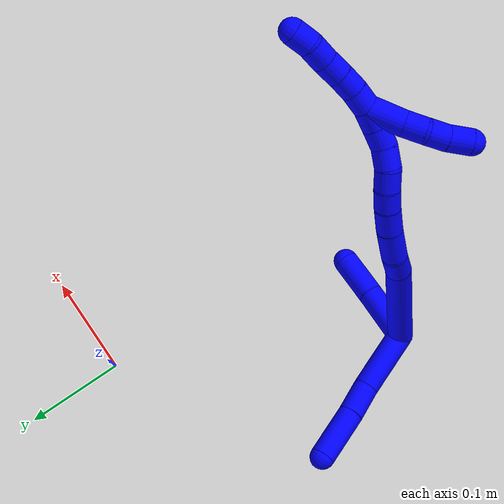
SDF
<sdf version="1.7">
 <world name="default">
  <model name="1">
   <static>0</static>
   <link name="1">
    <collision name="collision-cylinder-e_1_2_8">
     <pose>-0.031248 0.005356 -0.000579 -1.6785 -1.40007 1.50719</pose>
     <geometry><cylinder><radius>0.0125</radius><length>0.063418</length></cylinder></geometry>
     <surface>
      <friction><ode><mu>1.16</mu><mu2>1.16</mu2><slip1>0</slip1><slip2>0</slip2></ode></friction>
      <contact><ode><kp>1e+06</kp><kd>1</kd><max_vel>0</max_vel><min_depth>0.001</min_depth></ode></contact>
     </surface>
    </collision>
    <visual name="visual-cylinder-e_1_2_8">
     <pose>-0.031248 0.005356 -0.000579 -1.6785 -1.40007 1.50719</pose>
     <geometry><cylinder><radius>0.0125</radius><length>0.063418</length></cylinder></geometry>
     <material><ambient>0 0 1 1</ambient></material>
    </visual>
    <collision name="collision-cylinder-e_2_8_9">
     <pose>-0.077822 0.01696 -0.001065 -1.55583 -1.18363 1.16982</pose>
     <geometry><cylinder><radius>0.0125</radius><length>0.033104</length></cylinder></geometry>
     <surface>
      <friction><ode><mu>1.16</mu><mu2>1.16</mu2><slip1>0</slip1><slip2>0</slip2></ode></friction>
      <contact><ode><kp>1e+06</kp><kd>1</kd><max_vel>0</max_vel><min_depth>0.001</min_depth></ode></contact>
     </surface>
    </collision>
    <visual name="visual-cylinder-e_2_8_9">
     <pose>-0.077822 0.01696 -0.001065 -1.55583 -1.18363 1.16982</pose>
     <geometry><cylinder><radius>0.0125</radius><length>0.033104</length></cylinder></geometry>
     <material><ambient>0 0 1 1</ambient></material>
    </visual>
    <collision name="collision-cylinder-e_3_9_6">
     <pose>-0.118013 0.032957 -0.002306 -1.70687 -1.19399 1.32379</pose>
     <geometry><cylinder><radius>0.0125</radius><length>0.053479</length></cylinder></geometry>
     <surface>
      <friction><ode><mu>1.16</mu><mu2>1.16</mu2><slip1>0</slip1><slip2>0</slip2></ode></friction>
      <contact><ode><kp>1e+06</kp><kd>1</kd><max_vel>0</max_vel><min_depth>0.001</min_depth></ode></contact>
     </surface>
    </collision>
    <visual name="visual-cylinder-e_3_9_6">
     <pose>-0.118013 0.032957 -0.002306 -1.70687 -1.19399 1.32379</pose>
     <geometry><cylinder><radius>0.0125</radius><length>0.053479</length></cylinder></geometry>
     <material><ambient>0 0 1 1</ambient></material>
    </visual>
    <collision name="collision-cylinder-e_1_2_10">
     <pose>0.009305 -0.013395 -0.022246 2.59959 0.344082 1.11777</pose>
     <geometry><cylinder><radius>0.0125</radius><length>0.055169</length></cylinder></geometry>
     <surface>
      <friction><ode><mu>1.16</mu><mu2>1.16</mu2><slip1>0</slip1><slip2>0</slip2></ode></friction>
      <contact><ode><kp>1e+06</kp><kd>1</kd><max_vel>0</max_vel><min_depth>0.001</min_depth></ode></contact>
     </surface>
    </collision>
    <visual name="visual-cylinder-e_1_2_10">
     <pose>0.009305 -0.013395 -0.022246 2.59959 0.344082 1.11777</pose>
     <geometry><cylinder><radius>0.0125</radius><length>0.055169</length></cylinder></geometry>
     <material><ambient>0 0 1 1</ambient></material>
    </visual>
    <collision name="collision-cylinder-e_2_10_5">
     <pose>0.02589 -0.036109 -0.063535 2.68654 0.330767 1.2492</pose>
     <geometry><cylinder><radius>0.0125</radius><length>0.044831</length></cylinder></geometry>
     <surface>
      <friction><ode><mu>1.16</mu><mu2>1.16</mu2><slip1>0</slip1><slip2>0</slip2></ode></friction>
      <contact><ode><kp>1e+06</kp><kd>1</kd><max_vel>0</max_vel><min_depth>0.001</min_depth></ode></contact>
     </surface>
    </collision>
    <visual name="visual-cylinder-e_2_10_5">
     <pose>0.02589 -0.036109 -0.063535 2.68654 0.330767 1.2492</pose>
     <geometry><cylinder><radius>0.0125</radius><length>0.044831</length></cylinder></geometry>
     <material><ambient>0 0 1 1</ambient></material>
    </visual>
    <collision name="collision-cylinder-e_1_2_11">
     <pose>0.023943 0.044715 -0.025924 -2.0962 0.433809 -0.730644</pose>
     <geometry><cylinder><radius>0.0125</radius><length>0.113924</length></cylinder></geometry>
     <surface>
      <friction><ode><mu>1.16</mu><mu2>1.16</mu2><slip1>0</slip1><slip2>0</slip2></ode></friction>
      <contact><ode><kp>1e+06</kp><kd>1</kd><max_vel>0</max_vel><min_depth>0.001</min_depth></ode></contact>
     </surface>
    </collision>
    <visual name="visual-cylinder-e_1_2_11">
     <pose>0.023943 0.044715 -0.025924 -2.0962 0.433809 -0.730644</pose>
     <geometry><cylinder><radius>0.0125</radius><length>0.113924</length></cylinder></geometry>
     <material><ambient>0 0 1 1</ambient></material>
    </visual>
    <collision name="collision-cylinder-e_2_11_12">
     <pose>0.051574 0.099709 -0.058716 -2.15987 0.289891 -0.533194</pose>
     <geometry><cylinder><radius>0.0125</radius><length>0.025803</length></cylinder></geometry>
     <surface>
      <friction><ode><mu>1.16</mu><mu2>1.16</mu2><slip1>0</slip1><slip2>0</slip2></ode></friction>
      <contact><ode><kp>1e+06</kp><kd>1</kd><max_vel>0</max_vel><min_depth>0.001</min_depth></ode></contact>
     </surface>
    </collision>
    <visual name="visual-cylinder-e_2_11_12">
     <pose>0.051574 0.099709 -0.058716 -2.15987 0.289891 -0.533194</pose>
     <geometry><cylinder><radius>0.0125</radius><length>0.025803</length></cylinder></geometry>
     <material><ambient>0 0 1 1</ambient></material>
    </visual>
    <collision name="collision-cylinder-e_3_12_13">
     <pose>0.06312 0.120614 -0.075586 -2.32588 0.493981 -1.05646</pose>
     <geometry><cylinder><radius>0.0125</radius><length>0.033147</length></cylinder></geometry>
     <surface>
      <friction><ode><mu>1.16</mu><mu2>1.16</mu2><slip1>0</slip1><slip2>0</slip2></ode></friction>
      <contact><ode><kp>1e+06</kp><kd>1</kd><max_vel>0</max_vel><min_depth>0.001</min_depth></ode></contact>
     </surface>
    </collision>
    <visual name="visual-cylinder-e_3_12_13">
     <pose>0.06312 0.120614 -0.075586 -2.32588 0.493981 -1.05646</pose>
     <geometry><cylinder><radius>0.0125</radius><length>0.033147</length></cylinder></geometry>
     <material><ambient>0 0 1 1</ambient></material>
    </visual>
    <collision name="collision-cylinder-e_4_13_14">
     <pose>0.077978 0.138971 -0.092908 -2.32904 0.581601 -1.21562</pose>
     <geometry><cylinder><radius>0.0125</radius><length>0.025485</length></cylinder></geometry>
     <surface>
      <friction><ode><mu>1.16</mu><mu2>1.16</mu2><slip1>0</slip1><slip2>0</slip2></ode></friction>
      <contact><ode><kp>1e+06</kp><kd>1</kd><max_vel>0</max_vel><min_depth>0.001</min_depth></ode></contact>
     </surface>
    </collision>
    <visual name="visual-cylinder-e_4_13_14">
     <pose>0.077978 0.138971 -0.092908 -2.32904 0.581601 -1.21562</pose>
     <geometry><cylinder><radius>0.0125</radius><length>0.025485</length></cylinder></geometry>
     <material><ambient>0 0 1 1</ambient></material>
    </visual>
    <collision name="collision-cylinder-e_5_14_15">
     <pose>0.091357 0.152132 -0.105802 -2.36905 0.686689 -1.44222</pose>
     <geometry><cylinder><radius>0.0125</radius><length>0.020122</length></cylinder></geometry>
     <surface>
      <friction><ode><mu>1.16</mu><mu2>1.16</mu2><slip1>0</slip1><slip2>0</slip2></ode></friction>
      <contact><ode><kp>1e+06</kp><kd>1</kd><max_vel>0</max_vel><min_depth>0.001</min_depth></ode></contact>
     </surface>
    </collision>
    <visual name="visual-cylinder-e_5_14_15">
     <pose>0.091357 0.152132 -0.105802 -2.36905 0.686689 -1.44222</pose>
     <geometry><cylinder><radius>0.0125</radius><length>0.020122</length></cylinder></geometry>
     <material><ambient>0 0 1 1</ambient></material>
    </visual>
    <collision name="collision-cylinder-e_6_15_16">
     <pose>0.105125 0.16184 -0.116643 -2.45968 0.827871 -1.78282</pose>
     <geometry><cylinder><radius>0.0125</radius><length>0.020068</length></cylinder></geometry>
     <surface>
      <friction><ode><mu>1.16</mu><mu2>1.16</mu2><slip1>0</slip1><slip2>0</slip2></ode></friction>
      <contact><ode><kp>1e+06</kp><kd>1</kd><max_vel>0</max_vel><min_depth>0.001</min_depth></ode></contact>
     </surface>
    </collision>
    <visual name="visual-cylinder-e_6_15_16">
     <pose>0.105125 0.16184 -0.116643 -2.45968 0.827871 -1.78282</pose>
     <geometry><cylinder><radius>0.0125</radius><length>0.020068</length></cylinder></geometry>
     <material><ambient>0 0 1 1</ambient></material>
    </visual>
    <collision name="collision-cylinder-e_7_16_17">
     <pose>0.119575 0.168436 -0.129317 -2.8383 0.738318 -2.38923</pose>
     <geometry><cylinder><radius>0.0125</radius><length>0.020979</length></cylinder></geometry>
     <surface>
      <friction><ode><mu>1.16</mu><mu2>1.16</mu2><slip1>0</slip1><slip2>0</slip2></ode></friction>
      <contact><ode><kp>1e+06</kp><kd>1</kd><max_vel>0</max_vel><min_depth>0.001</min_depth></ode></contact>
     </surface>
    </collision>
    <visual name="visual-cylinder-e_7_16_17">
     <pose>0.119575 0.168436 -0.129317 -2.8383 0.738318 -2.38923</pose>
     <geometry><cylinder><radius>0.0125</radius><length>0.020979</length></cylinder></geometry>
     <material><ambient>0 0 1 1</ambient></material>
    </visual>
    <collision name="collision-cylinder-e_8_17_18">
     <pose>0.131167 0.174012 -0.145033 -2.76791 0.46971 -1.80425</pose>
     <geometry><cylinder><radius>0.0125</radius><length>0.020024</length></cylinder></geometry>
     <surface>
      <friction><ode><mu>1.16</mu><mu2>1.16</mu2><slip1>0</slip1><slip2>0</slip2></ode></friction>
      <contact><ode><kp>1e+06</kp><kd>1</kd><max_vel>0</max_vel><min_depth>0.001</min_depth></ode></contact>
     </surface>
    </collision>
    <visual name="visual-cylinder-e_8_17_18">
     <pose>0.131167 0.174012 -0.145033 -2.76791 0.46971 -1.80425</pose>
     <geometry><cylinder><radius>0.0125</radius><length>0.020024</length></cylinder></geometry>
     <material><ambient>0 0 1 1</ambient></material>
    </visual>
    <collision name="collision-cylinder-e_9_18_1">
     <pose>0.139861 0.181517 -0.161661 -2.66951 0.419283 -1.44849</pose>
     <geometry><cylinder><radius>0.0125</radius><length>0.020447</length></cylinder></geometry>
     <surface>
      <friction><ode><mu>1.16</mu><mu2>1.16</mu2><slip1>0</slip1><slip2>0</slip2></ode></friction>
      <contact><ode><kp>1e+06</kp><kd>1</kd><max_vel>0</max_vel><min_depth>0.001</min_depth></ode></contact>
     </surface>
    </collision>
    <visual name="visual-cylinder-e_9_18_1">
     <pose>0.139861 0.181517 -0.161661 -2.66951 0.419283 -1.44849</pose>
     <geometry><cylinder><radius>0.0125</radius><length>0.020447</length></cylinder></geometry>
     <material><ambient>0 0 1 1</ambient></material>
    </visual>
    <collision name="collision-cylinder-e_1_1_19">
     <pose>0.147632 0.185264 -0.152523 0.028614 0.203834 0.002927</pose>
     <geometry><cylinder><radius>0.0125</radius><length>0.035662</length></cylinder></geometry>
     <surface>
      <friction><ode><mu>1.16</mu><mu2>1.16</mu2><slip1>0</slip1><slip2>0</slip2></ode></friction>
      <contact><ode><kp>1e+06</kp><kd>1</kd><max_vel>0</max_vel><min_depth>0.001</min_depth></ode></contact>
     </surface>
    </collision>
    <visual name="visual-cylinder-e_1_1_19">
     <pose>0.147632 0.185264 -0.152523 0.028614 0.203834 0.002927</pose>
     <geometry><cylinder><radius>0.0125</radius><length>0.035662</length></cylinder></geometry>
     <material><ambient>0 0 1 1</ambient></material>
    </visual>
    <collision name="collision-cylinder-e_2_19_20">
     <pose>0.153965 0.185925 -0.124767 -0.112212 0.256872 -0.014507</pose>
     <geometry><cylinder><radius>0.0125</radius><length>0.021436</length></cylinder></geometry>
     <surface>
      <friction><ode><mu>1.16</mu><mu2>1.16</mu2><slip1>0</slip1><slip2>0</slip2></ode></friction>
      <contact><ode><kp>1e+06</kp><kd>1</kd><max_vel>0</max_vel><min_depth>0.001</min_depth></ode></contact>
     </surface>
    </collision>
    <visual name="visual-cylinder-e_2_19_20">
     <pose>0.153965 0.185925 -0.124767 -0.112212 0.256872 -0.014507</pose>
     <geometry><cylinder><radius>0.0125</radius><length>0.021436</length></cylinder></geometry>
     <material><ambient>0 0 1 1</ambient></material>
    </visual>
    <collision name="collision-cylinder-e_3_20_21">
     <pose>0.159693 0.185236 -0.105041 0.193894 0.303249 0.029717</pose>
     <geometry><cylinder><radius>0.0125</radius><length>0.020127</length></cylinder></geometry>
     <surface>
      <friction><ode><mu>1.16</mu><mu2>1.16</mu2><slip1>0</slip1><slip2>0</slip2></ode></friction>
      <contact><ode><kp>1e+06</kp><kd>1</kd><max_vel>0</max_vel><min_depth>0.001</min_depth></ode></contact>
     </surface>
    </collision>
    <visual name="visual-cylinder-e_3_20_21">
     <pose>0.159693 0.185236 -0.105041 0.193894 0.303249 0.029717</pose>
     <geometry><cylinder><radius>0.0125</radius><length>0.020127</length></cylinder></geometry>
     <material><ambient>0 0 1 1</ambient></material>
    </visual>
    <collision name="collision-cylinder-e_4_21_4">
     <pose>0.167538 0.182732 -0.08533 0.063372 0.439022 0.014143</pose>
     <geometry><cylinder><radius>0.0125</radius><length>0.022774</length></cylinder></geometry>
     <surface>
      <friction><ode><mu>1.16</mu><mu2>1.16</mu2><slip1>0</slip1><slip2>0</slip2></ode></friction>
      <contact><ode><kp>1e+06</kp><kd>1</kd><max_vel>0</max_vel><min_depth>0.001</min_depth></ode></contact>
     </surface>
    </collision>
    <visual name="visual-cylinder-e_4_21_4">
     <pose>0.167538 0.182732 -0.08533 0.063372 0.439022 0.014143</pose>
     <geometry><cylinder><radius>0.0125</radius><length>0.022774</length></cylinder></geometry>
     <material><ambient>0 0 1 1</ambient></material>
    </visual>
    <collision name="collision-cylinder-e_1_1_22">
     <pose>0.14671 0.188789 -0.179123 -2.8221 0.272066 -1.40845</pose>
     <geometry><cylinder><radius>0.0125</radius><length>0.02</length></cylinder></geometry>
     <surface>
      <friction><ode><mu>1.16</mu><mu2>1.16</mu2><slip1>0</slip1><slip2>0</slip2></ode></friction>
      <contact><ode><kp>1e+06</kp><kd>1</kd><max_vel>0</max_vel><min_depth>0.001</min_depth></ode></contact>
     </surface>
    </collision>
    <visual name="visual-cylinder-e_1_1_22">
     <pose>0.14671 0.188789 -0.179123 -2.8221 0.272066 -1.40845</pose>
     <geometry><cylinder><radius>0.0125</radius><length>0.02</length></cylinder></geometry>
     <material><ambient>0 0 1 1</ambient></material>
    </visual>
    <collision name="collision-cylinder-e_2_22_23">
     <pose>0.150787 0.195494 -0.197462 -2.76093 0.139408 -0.695325</pose>
     <geometry><cylinder><radius>0.0125</radius><length>0.02</length></cylinder></geometry>
     <surface>
      <friction><ode><mu>1.16</mu><mu2>1.16</mu2><slip1>0</slip1><slip2>0</slip2></ode></friction>
      <contact><ode><kp>1e+06</kp><kd>1</kd><max_vel>0</max_vel><min_depth>0.001</min_depth></ode></contact>
     </surface>
    </collision>
    <visual name="visual-cylinder-e_2_22_23">
     <pose>0.150787 0.195494 -0.197462 -2.76093 0.139408 -0.695325</pose>
     <geometry><cylinder><radius>0.0125</radius><length>0.02</length></cylinder></geometry>
     <material><ambient>0 0 1 1</ambient></material>
    </visual>
    <collision name="collision-cylinder-e_3_23_24">
     <pose>0.153064 0.203076 -0.215819 -2.73893 0.088931 -0.429298</pose>
     <geometry><cylinder><radius>0.0125</radius><length>0.02</length></cylinder></geometry>
     <surface>
      <friction><ode><mu>1.16</mu><mu2>1.16</mu2><slip1>0</slip1><slip2>0</slip2></ode></friction>
      <contact><ode><kp>1e+06</kp><kd>1</kd><max_vel>0</max_vel><min_depth>0.001</min_depth></ode></contact>
     </surface>
    </collision>
    <visual name="visual-cylinder-e_3_23_24">
     <pose>0.153064 0.203076 -0.215819 -2.73893 0.088931 -0.429298</pose>
     <geometry><cylinder><radius>0.0125</radius><length>0.02</length></cylinder></geometry>
     <material><ambient>0 0 1 1</ambient></material>
    </visual>
    <collision name="collision-cylinder-e_4_24_25">
     <pose>0.15534 0.211387 -0.233852 -2.68034 0.139164 -0.577074</pose>
     <geometry><cylinder><radius>0.0125</radius><length>0.02</length></cylinder></geometry>
     <surface>
      <friction><ode><mu>1.16</mu><mu2>1.16</mu2><slip1>0</slip1><slip2>0</slip2></ode></friction>
      <contact><ode><kp>1e+06</kp><kd>1</kd><max_vel>0</max_vel><min_depth>0.001</min_depth></ode></contact>
     </surface>
    </collision>
    <visual name="visual-cylinder-e_4_24_25">
     <pose>0.15534 0.211387 -0.233852 -2.68034 0.139164 -0.577074</pose>
     <geometry><cylinder><radius>0.0125</radius><length>0.02</length></cylinder></geometry>
     <material><ambient>0 0 1 1</ambient></material>
    </visual>
    <collision name="collision-cylinder-e_5_25_3">
     <pose>0.15676 0.218088 -0.252453 -2.91016 0.003308 -0.028455</pose>
     <geometry><cylinder><radius>0.0125</radius><length>0.02</length></cylinder></geometry>
     <surface>
      <friction><ode><mu>1.16</mu><mu2>1.16</mu2><slip1>0</slip1><slip2>0</slip2></ode></friction>
      <contact><ode><kp>1e+06</kp><kd>1</kd><max_vel>0</max_vel><min_depth>0.001</min_depth></ode></contact>
     </surface>
    </collision>
    <visual name="visual-cylinder-e_5_25_3">
     <pose>0.15676 0.218088 -0.252453 -2.91016 0.003308 -0.028455</pose>
     <geometry><cylinder><radius>0.0125</radius><length>0.02</length></cylinder></geometry>
     <material><ambient>0 0 1 1</ambient></material>
    </visual>
    <collision name="collision-sphere-3">
     <pose>0.156793 0.220382 -0.262187 0 -0 0</pose>
     <geometry><sphere><radius>0.0125</radius></sphere></geometry>
     <surface>
      <friction><ode><mu>1.16</mu><mu2>1.16</mu2><slip1>0</slip1><slip2>0</slip2></ode></friction>
      <contact><ode><kp>1e+06</kp><kd>1</kd><max_vel>0</max_vel><min_depth>0.001</min_depth></ode></contact>
     </surface>
    </collision>
    <visual name="visual-sphere-3">
     <pose>0.156793 0.220382 -0.262187 0 -0 0</pose>
     <geometry><sphere><radius>0.0125</radius></sphere></geometry>
     <material><ambient>0 0 1 1</ambient></material>
    </visual>
    <collision name="collision-sphere-25">
     <pose>0.156727 0.215795 -0.24272 0 -0 0</pose>
     <geometry><sphere><radius>0.0125</radius></sphere></geometry>
     <surface>
      <friction><ode><mu>1.16</mu><mu2>1.16</mu2><slip1>0</slip1><slip2>0</slip2></ode></friction>
      <contact><ode><kp>1e+06</kp><kd>1</kd><max_vel>0</max_vel><min_depth>0.001</min_depth></ode></contact>
     </surface>
    </collision>
    <visual name="visual-sphere-25">
     <pose>0.156727 0.215795 -0.24272 0 -0 0</pose>
     <geometry><sphere><radius>0.0125</radius></sphere></geometry>
     <material><ambient>0 0 1 1</ambient></material>
    </visual>
    <collision name="collision-sphere-24">
     <pose>0.153953 0.206979 -0.224983 0 -0 0</pose>
     <geometry><sphere><radius>0.0125</radius></sphere></geometry>
     <surface>
      <friction><ode><mu>1.16</mu><mu2>1.16</mu2><slip1>0</slip1><slip2>0</slip2></ode></friction>
      <contact><ode><kp>1e+06</kp><kd>1</kd><max_vel>0</max_vel><min_depth>0.001</min_depth></ode></contact>
     </surface>
    </collision>
    <visual name="visual-sphere-24">
     <pose>0.153953 0.206979 -0.224983 0 -0 0</pose>
     <geometry><sphere><radius>0.0125</radius></sphere></geometry>
     <material><ambient>0 0 1 1</ambient></material>
    </visual>
    <collision name="collision-sphere-23">
     <pose>0.152176 0.199173 -0.206656 0 -0 0</pose>
     <geometry><sphere><radius>0.0125</radius></sphere></geometry>
     <surface>
      <friction><ode><mu>1.16</mu><mu2>1.16</mu2><slip1>0</slip1><slip2>0</slip2></ode></friction>
      <contact><ode><kp>1e+06</kp><kd>1</kd><max_vel>0</max_vel><min_depth>0.001</min_depth></ode></contact>
     </surface>
    </collision>
    <visual name="visual-sphere-23">
     <pose>0.152176 0.199173 -0.206656 0 -0 0</pose>
     <geometry><sphere><radius>0.0125</radius></sphere></geometry>
     <material><ambient>0 0 1 1</ambient></material>
    </visual>
    <collision name="collision-sphere-22">
     <pose>0.149397 0.191814 -0.188267 0 -0 0</pose>
     <geometry><sphere><radius>0.0125</radius></sphere></geometry>
     <surface>
      <friction><ode><mu>1.16</mu><mu2>1.16</mu2><slip1>0</slip1><slip2>0</slip2></ode></friction>
      <contact><ode><kp>1e+06</kp><kd>1</kd><max_vel>0</max_vel><min_depth>0.001</min_depth></ode></contact>
     </surface>
    </collision>
    <visual name="visual-sphere-22">
     <pose>0.149397 0.191814 -0.188267 0 -0 0</pose>
     <geometry><sphere><radius>0.0125</radius></sphere></geometry>
     <material><ambient>0 0 1 1</ambient></material>
    </visual>
    <collision name="collision-sphere-4">
     <pose>0.172378 0.182079 -0.075044 0 -0 0</pose>
     <geometry><sphere><radius>0.0125</radius></sphere></geometry>
     <surface>
      <friction><ode><mu>1.16</mu><mu2>1.16</mu2><slip1>0</slip1><slip2>0</slip2></ode></friction>
      <contact><ode><kp>1e+06</kp><kd>1</kd><max_vel>0</max_vel><min_depth>0.001</min_depth></ode></contact>
     </surface>
    </collision>
    <visual name="visual-sphere-4">
     <pose>0.172378 0.182079 -0.075044 0 -0 0</pose>
     <geometry><sphere><radius>0.0125</radius></sphere></geometry>
     <material><ambient>0 0 1 1</ambient></material>
    </visual>
    <collision name="collision-sphere-21">
     <pose>0.162698 0.183385 -0.095617 0 -0 0</pose>
     <geometry><sphere><radius>0.0125</radius></sphere></geometry>
     <surface>
      <friction><ode><mu>1.16</mu><mu2>1.16</mu2><slip1>0</slip1><slip2>0</slip2></ode></friction>
      <contact><ode><kp>1e+06</kp><kd>1</kd><max_vel>0</max_vel><min_depth>0.001</min_depth></ode></contact>
     </surface>
    </collision>
    <visual name="visual-sphere-21">
     <pose>0.162698 0.183385 -0.095617 0 -0 0</pose>
     <geometry><sphere><radius>0.0125</radius></sphere></geometry>
     <material><ambient>0 0 1 1</ambient></material>
    </visual>
    <collision name="collision-sphere-20">
     <pose>0.156688 0.187086 -0.114466 0 -0 0</pose>
     <geometry><sphere><radius>0.0125</radius></sphere></geometry>
     <surface>
      <friction><ode><mu>1.16</mu><mu2>1.16</mu2><slip1>0</slip1><slip2>0</slip2></ode></friction>
      <contact><ode><kp>1e+06</kp><kd>1</kd><max_vel>0</max_vel><min_depth>0.001</min_depth></ode></contact>
     </surface>
    </collision>
    <visual name="visual-sphere-20">
     <pose>0.156688 0.187086 -0.114466 0 -0 0</pose>
     <geometry><sphere><radius>0.0125</radius></sphere></geometry>
     <material><ambient>0 0 1 1</ambient></material>
    </visual>
    <collision name="collision-sphere-5">
     <pose>0.03317 -0.045426 -0.082578 0 -0 0</pose>
     <geometry><sphere><radius>0.0125</radius></sphere></geometry>
     <surface>
      <friction><ode><mu>1.16</mu><mu2>1.16</mu2><slip1>0</slip1><slip2>0</slip2></ode></friction>
      <contact><ode><kp>1e+06</kp><kd>1</kd><max_vel>0</max_vel><min_depth>0.001</min_depth></ode></contact>
     </surface>
    </collision>
    <visual name="visual-sphere-5">
     <pose>0.03317 -0.045426 -0.082578 0 -0 0</pose>
     <geometry><sphere><radius>0.0125</radius></sphere></geometry>
     <material><ambient>0 0 1 1</ambient></material>
    </visual>
    <collision name="collision-sphere-10">
     <pose>0.01861 -0.026791 -0.044492 0 -0 0</pose>
     <geometry><sphere><radius>0.0125</radius></sphere></geometry>
     <surface>
      <friction><ode><mu>1.16</mu><mu2>1.16</mu2><slip1>0</slip1><slip2>0</slip2></ode></friction>
      <contact><ode><kp>1e+06</kp><kd>1</kd><max_vel>0</max_vel><min_depth>0.001</min_depth></ode></contact>
     </surface>
    </collision>
    <visual name="visual-sphere-10">
     <pose>0.01861 -0.026791 -0.044492 0 -0 0</pose>
     <geometry><sphere><radius>0.0125</radius></sphere></geometry>
     <material><ambient>0 0 1 1</ambient></material>
    </visual>
    <collision name="collision-sphere-6">
     <pose>-0.142876 0.042705 -0.00364 0 -0 0</pose>
     <geometry><sphere><radius>0.0125</radius></sphere></geometry>
     <surface>
      <friction><ode><mu>1.16</mu><mu2>1.16</mu2><slip1>0</slip1><slip2>0</slip2></ode></friction>
      <contact><ode><kp>1e+06</kp><kd>1</kd><max_vel>0</max_vel><min_depth>0.001</min_depth></ode></contact>
     </surface>
    </collision>
    <visual name="visual-sphere-6">
     <pose>-0.142876 0.042705 -0.00364 0 -0 0</pose>
     <geometry><sphere><radius>0.0125</radius></sphere></geometry>
     <material><ambient>0 0 1 1</ambient></material>
    </visual>
    <collision name="collision-sphere-9">
     <pose>-0.093149 0.023209 -0.000971 0 -0 0</pose>
     <geometry><sphere><radius>0.0125</radius></sphere></geometry>
     <surface>
      <friction><ode><mu>1.16</mu><mu2>1.16</mu2><slip1>0</slip1><slip2>0</slip2></ode></friction>
      <contact><ode><kp>1e+06</kp><kd>1</kd><max_vel>0</max_vel><min_depth>0.001</min_depth></ode></contact>
     </surface>
    </collision>
    <visual name="visual-sphere-9">
     <pose>-0.093149 0.023209 -0.000971 0 -0 0</pose>
     <geometry><sphere><radius>0.0125</radius></sphere></geometry>
     <material><ambient>0 0 1 1</ambient></material>
    </visual>
    <collision name="collision-sphere-2">
     <geometry><sphere><radius>0.0125</radius></sphere></geometry>
     <surface>
      <friction><ode><mu>1.16</mu><mu2>1.16</mu2><slip1>0</slip1><slip2>0</slip2></ode></friction>
      <contact><ode><kp>1e+06</kp><kd>1</kd><max_vel>0</max_vel><min_depth>0.001</min_depth></ode></contact>
     </surface>
    </collision>
    <visual name="visual-sphere-2">
     <geometry><sphere><radius>0.0125</radius></sphere></geometry>
     <material><ambient>0 0 1 1</ambient></material>
    </visual>
    <collision name="collision-sphere-19">
     <pose>0.151242 0.184764 -0.135068 0 -0 0</pose>
     <geometry><sphere><radius>0.0125</radius></sphere></geometry>
     <surface>
      <friction><ode><mu>1.16</mu><mu2>1.16</mu2><slip1>0</slip1><slip2>0</slip2></ode></friction>
      <contact><ode><kp>1e+06</kp><kd>1</kd><max_vel>0</max_vel><min_depth>0.001</min_depth></ode></contact>
     </surface>
    </collision>
    <visual name="visual-sphere-19">
     <pose>0.151242 0.184764 -0.135068 0 -0 0</pose>
     <geometry><sphere><radius>0.0125</radius></sphere></geometry>
     <material><ambient>0 0 1 1</ambient></material>
    </visual>
    <collision name="collision-sphere-8">
     <pose>-0.062496 0.010712 -0.001158 0 -0 0</pose>
     <geometry><sphere><radius>0.0125</radius></sphere></geometry>
     <surface>
      <friction><ode><mu>1.16</mu><mu2>1.16</mu2><slip1>0</slip1><slip2>0</slip2></ode></friction>
      <contact><ode><kp>1e+06</kp><kd>1</kd><max_vel>0</max_vel><min_depth>0.001</min_depth></ode></contact>
     </surface>
    </collision>
    <visual name="visual-sphere-8">
     <pose>-0.062496 0.010712 -0.001158 0 -0 0</pose>
     <geometry><sphere><radius>0.0125</radius></sphere></geometry>
     <material><ambient>0 0 1 1</ambient></material>
    </visual>
    <collision name="collision-sphere-11">
     <pose>0.047886 0.089429 -0.051847 0 -0 0</pose>
     <geometry><sphere><radius>0.0125</radius></sphere></geometry>
     <surface>
      <friction><ode><mu>1.16</mu><mu2>1.16</mu2><slip1>0</slip1><slip2>0</slip2></ode></friction>
      <contact><ode><kp>1e+06</kp><kd>1</kd><max_vel>0</max_vel><min_depth>0.001</min_depth></ode></contact>
     </surface>
    </collision>
    <visual name="visual-sphere-11">
     <pose>0.047886 0.089429 -0.051847 0 -0 0</pose>
     <geometry><sphere><radius>0.0125</radius></sphere></geometry>
     <material><ambient>0 0 1 1</ambient></material>
    </visual>
    <collision name="collision-sphere-12">
     <pose>0.055262 0.109988 -0.065585 0 -0 0</pose>
     <geometry><sphere><radius>0.0125</radius></sphere></geometry>
     <surface>
      <friction><ode><mu>1.16</mu><mu2>1.16</mu2><slip1>0</slip1><slip2>0</slip2></ode></friction>
      <contact><ode><kp>1e+06</kp><kd>1</kd><max_vel>0</max_vel><min_depth>0.001</min_depth></ode></contact>
     </surface>
    </collision>
    <visual name="visual-sphere-12">
     <pose>0.055262 0.109988 -0.065585 0 -0 0</pose>
     <geometry><sphere><radius>0.0125</radius></sphere></geometry>
     <material><ambient>0 0 1 1</ambient></material>
    </visual>
    <collision name="collision-sphere-13">
     <pose>0.070978 0.13124 -0.085587 0 -0 0</pose>
     <geometry><sphere><radius>0.0125</radius></sphere></geometry>
     <surface>
      <friction><ode><mu>1.16</mu><mu2>1.16</mu2><slip1>0</slip1><slip2>0</slip2></ode></friction>
      <contact><ode><kp>1e+06</kp><kd>1</kd><max_vel>0</max_vel><min_depth>0.001</min_depth></ode></contact>
     </surface>
    </collision>
    <visual name="visual-sphere-13">
     <pose>0.070978 0.13124 -0.085587 0 -0 0</pose>
     <geometry><sphere><radius>0.0125</radius></sphere></geometry>
     <material><ambient>0 0 1 1</ambient></material>
    </visual>
    <collision name="collision-sphere-14">
     <pose>0.084978 0.146701 -0.10023 0 -0 0</pose>
     <geometry><sphere><radius>0.0125</radius></sphere></geometry>
     <surface>
      <friction><ode><mu>1.16</mu><mu2>1.16</mu2><slip1>0</slip1><slip2>0</slip2></ode></friction>
      <contact><ode><kp>1e+06</kp><kd>1</kd><max_vel>0</max_vel><min_depth>0.001</min_depth></ode></contact>
     </surface>
    </collision>
    <visual name="visual-sphere-14">
     <pose>0.084978 0.146701 -0.10023 0 -0 0</pose>
     <geometry><sphere><radius>0.0125</radius></sphere></geometry>
     <material><ambient>0 0 1 1</ambient></material>
    </visual>
    <collision name="collision-sphere-15">
     <pose>0.097735 0.157562 -0.111374 0 -0 0</pose>
     <geometry><sphere><radius>0.0125</radius></sphere></geometry>
     <surface>
      <friction><ode><mu>1.16</mu><mu2>1.16</mu2><slip1>0</slip1><slip2>0</slip2></ode></friction>
      <contact><ode><kp>1e+06</kp><kd>1</kd><max_vel>0</max_vel><min_depth>0.001</min_depth></ode></contact>
     </surface>
    </collision>
    <visual name="visual-sphere-15">
     <pose>0.097735 0.157562 -0.111374 0 -0 0</pose>
     <geometry><sphere><radius>0.0125</radius></sphere></geometry>
     <material><ambient>0 0 1 1</ambient></material>
    </visual>
    <collision name="collision-sphere-16">
     <pose>0.112515 0.166118 -0.121913 0 -0 0</pose>
     <geometry><sphere><radius>0.0125</radius></sphere></geometry>
     <surface>
      <friction><ode><mu>1.16</mu><mu2>1.16</mu2><slip1>0</slip1><slip2>0</slip2></ode></friction>
      <contact><ode><kp>1e+06</kp><kd>1</kd><max_vel>0</max_vel><min_depth>0.001</min_depth></ode></contact>
     </surface>
    </collision>
    <visual name="visual-sphere-16">
     <pose>0.112515 0.166118 -0.121913 0 -0 0</pose>
     <geometry><sphere><radius>0.0125</radius></sphere></geometry>
     <material><ambient>0 0 1 1</ambient></material>
    </visual>
    <collision name="collision-sphere-17">
     <pose>0.126635 0.170753 -0.136721 0 -0 0</pose>
     <geometry><sphere><radius>0.0125</radius></sphere></geometry>
     <surface>
      <friction><ode><mu>1.16</mu><mu2>1.16</mu2><slip1>0</slip1><slip2>0</slip2></ode></friction>
      <contact><ode><kp>1e+06</kp><kd>1</kd><max_vel>0</max_vel><min_depth>0.001</min_depth></ode></contact>
     </surface>
    </collision>
    <visual name="visual-sphere-17">
     <pose>0.126635 0.170753 -0.136721 0 -0 0</pose>
     <geometry><sphere><radius>0.0125</radius></sphere></geometry>
     <material><ambient>0 0 1 1</ambient></material>
    </visual>
    <collision name="collision-sphere-18">
     <pose>0.135698 0.177271 -0.153344 0 -0 0</pose>
     <geometry><sphere><radius>0.0125</radius></sphere></geometry>
     <surface>
      <friction><ode><mu>1.16</mu><mu2>1.16</mu2><slip1>0</slip1><slip2>0</slip2></ode></friction>
      <contact><ode><kp>1e+06</kp><kd>1</kd><max_vel>0</max_vel><min_depth>0.001</min_depth></ode></contact>
     </surface>
    </collision>
    <visual name="visual-sphere-18">
     <pose>0.135698 0.177271 -0.153344 0 -0 0</pose>
     <geometry><sphere><radius>0.0125</radius></sphere></geometry>
     <material><ambient>0 0 1 1</ambient></material>
    </visual>
    <collision name="collision-sphere-1">
     <pose>0.144023 0.185764 -0.169978 0 -0 0</pose>
     <geometry><sphere><radius>0.0125</radius></sphere></geometry>
     <surface>
      <friction><ode><mu>1.16</mu><mu2>1.16</mu2><slip1>0</slip1><slip2>0</slip2></ode></friction>
      <contact><ode><kp>1e+06</kp><kd>1</kd><max_vel>0</max_vel><min_depth>0.001</min_depth></ode></contact>
     </surface>
    </collision>
    <visual name="visual-sphere-1">
     <pose>0.144023 0.185764 -0.169978 0 -0 0</pose>
     <geometry><sphere><radius>0.0125</radius></sphere></geometry>
     <material><ambient>0 0 1 1</ambient></material>
    </visual>
    <inertial>
     <pose>0.055645 0.09516 -0.081001 0 -0 0</pose>
     <mass>0.75</mass>
     <inertia>
      <ixx>6.2e-05</ixx>
      <ixy>0</ixy>
      <ixz>0</ixz>
      <iyy>-1.7e-05</iyy>
      <iyz>0</iyz>
      <izz>-0.000164</izz>
     </inertia>
    </inertial>
   </link>
   <pose>-0.13936 -0.255768 0.039207 1.70073 -0.09936 -1.19551</pose>
  </model>
 </world>
</sdf>
